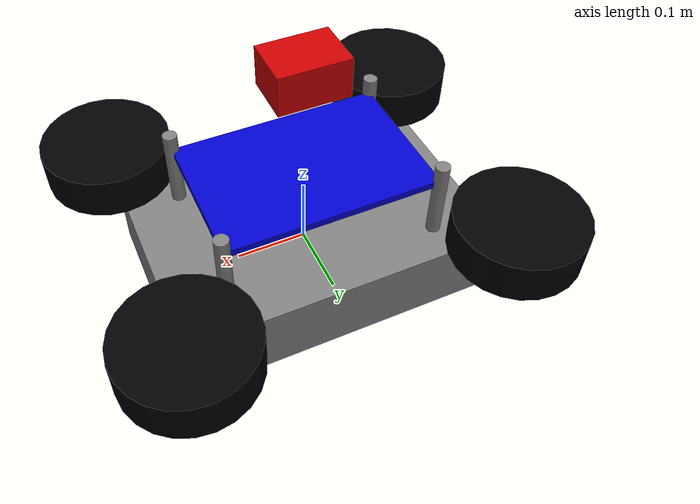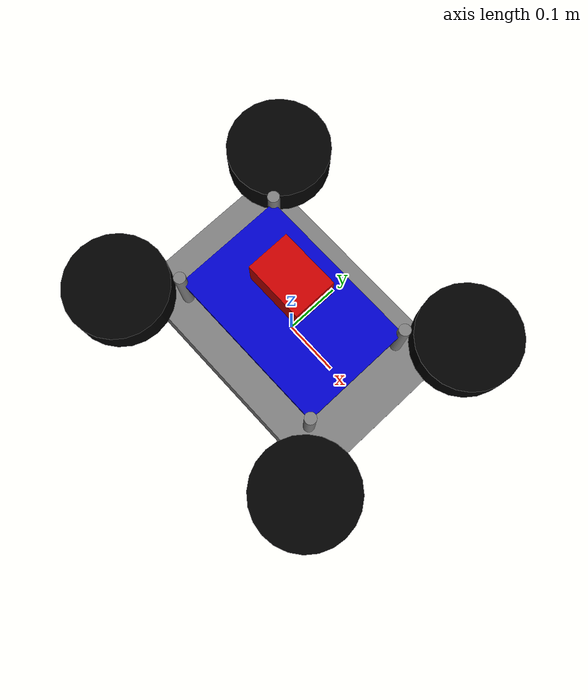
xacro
<?xml version="1.0"?>
<robot xmlns:xacro="http://www.ros.org/wiki/xacro">
  <xacro:include filename="common.xacro" />
  <xacro:include filename="base_and_wheels.xacro" />
  <xacro:include filename="upper_frame_and_sensors.xacro" />

  <!-- Gazebo Plugins -->
  <gazebo>
    <plugin name="diff_drive_controller" filename="libgazebo_ros_diff_drive.so">
      <robotNamespace>/</robotNamespace>
      <commandTopic>/cmd_vel</commandTopic>
      <odometryTopic>/odom</odometryTopic>
      <robotBaseFrame>base_frame</robotBaseFrame>
      <leftJoint>wheel_front_left_joint</leftJoint>
      <leftJoint>wheel_back_left_joint</leftJoint>
      <rightJoint>wheel_front_right_joint</rightJoint>
      <rightJoint>wheel_back_right_joint</rightJoint>
      <wheelSeparation>${wheel_separation}</wheelSeparation>
      <wheelDiameter>${2 * wheel_radius}</wheelDiameter>
      <updateRate>100</updateRate>
    </plugin>
    <plugin name="imu_plugin" filename="libgazebo_ros_imu.so">
      <robotNamespace>/</robotNamespace>
      <topicName>/imu/data</topicName>
      <frameName>base_frame</frameName>
      <updateRate>50.0</updateRate>
    </plugin>
    <plugin name="rplidar_plugin" filename="libgazebo_ros_laser.so">
      <robotNamespace>/</robotNamespace>
      <topicName>/scan</topicName>
      <frameName>rplidar_sensor</frameName>
      <updateRate>10.0</updateRate>
      <horizontalSamples>360</horizontalSamples>
      <horizontalResolution>1.0</horizontalResolution>
      <minRange>0.1</minRange>
      <maxRange>12.0</maxRange>
    </plugin>
  </gazebo>
</robot>

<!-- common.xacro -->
<robot xmlns:xacro="http://www.ros.org/wiki/xacro">

  <!-- Physical Constants -->
  <xacro:property name="wheel_radius" value="0.09" />
  <xacro:property name="wheel_width" value="0.06" />
  <xacro:property name="wheel_separation" value="0.36" />
  <xacro:property name="base_length" value="0.45" />
  <xacro:property name="base_width" value="0.30" />
  <xacro:property name="base_height" value="0.10" />
  <xacro:property name="pillar_radius" value="0.01" />
  <xacro:property name="pillar_height" value="0.13" />
  <xacro:property name="lidar_length" value="0.096" />
  <xacro:property name="lidar_width" value="0.070" />
  <xacro:property name="lidar_height" value="0.055" />
  <xacro:property name="floor2_thickness" value="0.01" />
  <xacro:property name="floor2_length" value="0.30" />
  <xacro:property name="floor2_width" value="0.20" />

    <!-- 색깔 정의 -->
  <material name="black">
    <color rgba="0.0 0.0 0.0 1.0"/>
  </material>
  <material name="red">
    <color rgba="0.8 0.0 0.0 1.0"/>
  </material>
  <material name="white">
    <color rgba="1.0 1.0 1.0 1.0"/>
  </material>
  <material name="gray">
    <color rgba="0.5 0.5 0.5 1.0"/>
  </material>
  <material name="blue">
    <color rgba="0.0 0.0 0.8 1.0"/>
  </material>

  <!-- Wheel Macro -->
  <xacro:macro name="wheel" params="name x y">
    <link name="${name}">
      <visual>
        <geometry>
          <cylinder radius="${wheel_radius}" length="${wheel_width}" />
        </geometry>
        <material name="black"/>
      </visual>
      <collision>
        <geometry>
          <cylinder radius="${wheel_radius}" length="${wheel_width}" />
        </geometry>
      </collision>
      <inertial>
        <mass value="1.0"/>
        <origin xyz="0 0 0" />
        <inertia ixx="0.001" ixy="0.0" ixz="0.0" iyy="0.001" iyz="0.0" izz="0.001" />
      </inertial>
    </link>
    <joint name="${name}_joint" type="continuous">
      <parent link="base_frame"/>
      <child link="${name}"/>
      <origin xyz="${x} ${y} ${wheel_radius}" rpy="0 0 0" />
      <axis xyz="0 1 0" />
    </joint>
  </xacro:macro>

  <!-- Pillar Macro -->
  <xacro:macro name="pillar" params="name x y">
    <link name="${name}">
      <visual>
        <geometry>
          <cylinder radius="${pillar_radius}" length="${pillar_height}" />
        </geometry>
        <material name="gray"/>
      </visual>
      <collision>
        <geometry>
          <cylinder radius="${pillar_radius}" length="${pillar_height}" />
        </geometry>
      </collision>
    </link>
    <joint name="${name}_joint" type="fixed">
      <parent link="base_frame"/>
      <child link="${name}"/>
      <origin xyz="${x} ${y} ${base_height}" rpy="0 0 0" />
    </joint>
  </xacro:macro>

</robot>

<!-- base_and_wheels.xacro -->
<robot xmlns:xacro="http://www.ros.org/wiki/xacro">
  <xacro:include filename="common.xacro" />

  <!-- Base Frame -->
  <link name="base_frame">
    <inertial>
      <mass value="10.0"/>
      <origin xyz="0 0 ${base_height/2}" />
      <inertia ixx="0.1" ixy="0.0" ixz="0.0" iyy="0.1" iyz="0.0" izz="0.1" />
    </inertial>
    <visual>
      <geometry>
        <box size="${base_length} ${base_width} ${base_height}" />
      </geometry>
      <material name="gray"/>
    </visual>
    <collision>
      <geometry>
        <box size="${base_length} ${base_width} ${base_height}" />
      </geometry>
    </collision>
  </link>

  <!-- Wheels -->
  <xacro:wheel name="wheel_front_left" x="${base_length/2}" y="${wheel_separation/2}" />
  <xacro:wheel name="wheel_front_right" x="${base_length/2}" y="-${wheel_separation/2}" />
  <xacro:wheel name="wheel_back_left" x="-${base_length/2}" y="${wheel_separation/2}" />
  <xacro:wheel name="wheel_back_right" x="-${base_length/2}" y="-${wheel_separation/2}" />
</robot>

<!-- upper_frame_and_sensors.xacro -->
<robot xmlns:xacro="http://www.ros.org/wiki/xacro">
  <xacro:include filename="common.xacro" />

  <!-- Floor 2 -->
  <link name="frame_2nd_floor">
    <inertial>
      <mass value="2.0" />
      <origin xyz="0 0 ${pillar_height + floor2_thickness/2}" />
      <inertia ixx="0.005" ixy="0.0" ixz="0.0" iyy="0.005" iyz="0.0" izz="0.005" />
    </inertial>
    <visual>
      <geometry>
        <box size="${floor2_length} ${floor2_width} ${floor2_thickness}" />
      </geometry>
      <material name="blue"/>
    </visual>
    <collision>
      <geometry>
        <box size="${floor2_length} ${floor2_width} ${floor2_thickness}" />
      </geometry>
    </collision>
  </link>
  <joint name="frame_2nd_floor_joint" type="fixed">
    <parent link="base_frame"/>
    <child link="frame_2nd_floor"/>
    <origin xyz="0 0 ${pillar_height + floor2_thickness/2}" rpy="0 0 0" />
  </joint>

  <!-- Pillars -->
  <xacro:pillar name="pillar_1" x="${floor2_length/2}" y="${floor2_width/2}" />
  <xacro:pillar name="pillar_2" x="${floor2_length/2}" y="-${floor2_width/2}" />
  <xacro:pillar name="pillar_3" x="-${floor2_length/2}" y="${floor2_width/2}" />
  <xacro:pillar name="pillar_4" x="-${floor2_length/2}" y="-${floor2_width/2}" />

  <!-- LiDAR -->
  <link name="rplidar_sensor">
    <visual>
      <geometry>
        <box size="${lidar_length} ${lidar_width} ${lidar_height}" />
      </geometry>
      <material name="red"/>
    </visual>
    <collision>
      <geometry>
        <box size="${lidar_length} ${lidar_width} ${lidar_height}" />
      </geometry>
    </collision>
    <inertial>
      <mass value="0.5"/>
      <origin xyz="0 0 ${lidar_height/2}" />
      <inertia ixx="0.001" ixy="0.0" ixz="0.0" iyy="0.001" iyz="0.0" izz="0.001" />
    </inertial>
  </link>
  <joint name="rplidar_joint" type="fixed">
    <parent link="frame_2nd_floor"/>
    <child link="rplidar_sensor"/>
    <origin xyz="0 0 ${pillar_height + lidar_height/2}" rpy="0 0 0" />
  </joint>
</robot>
